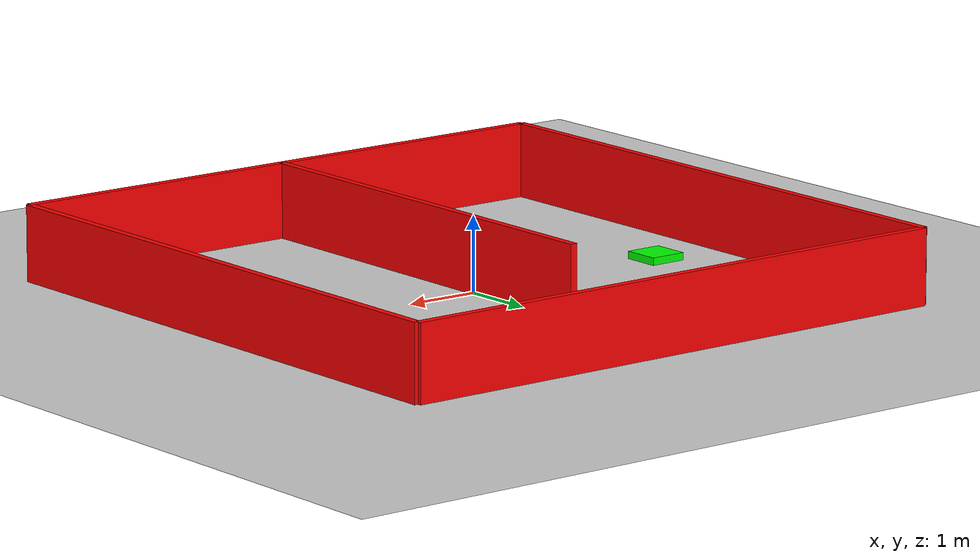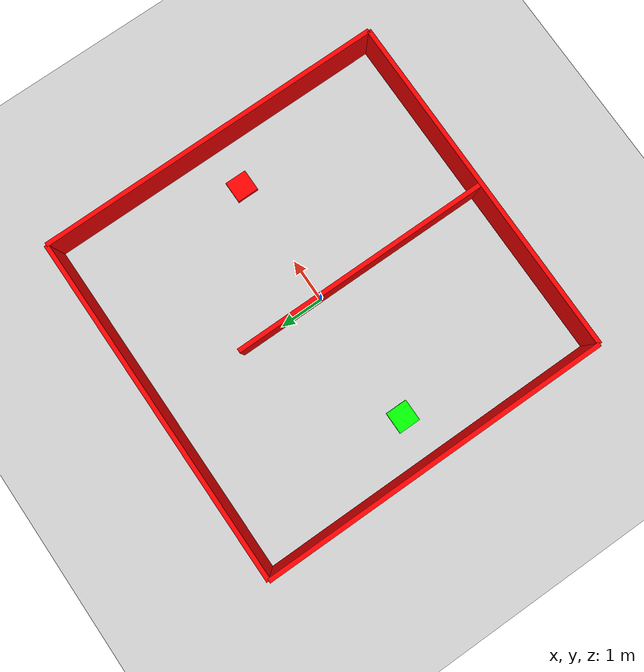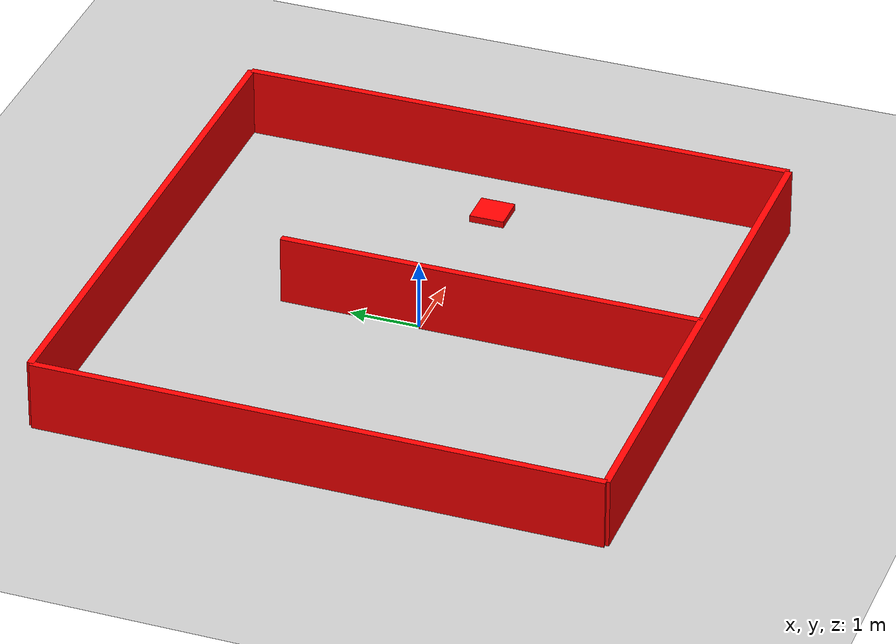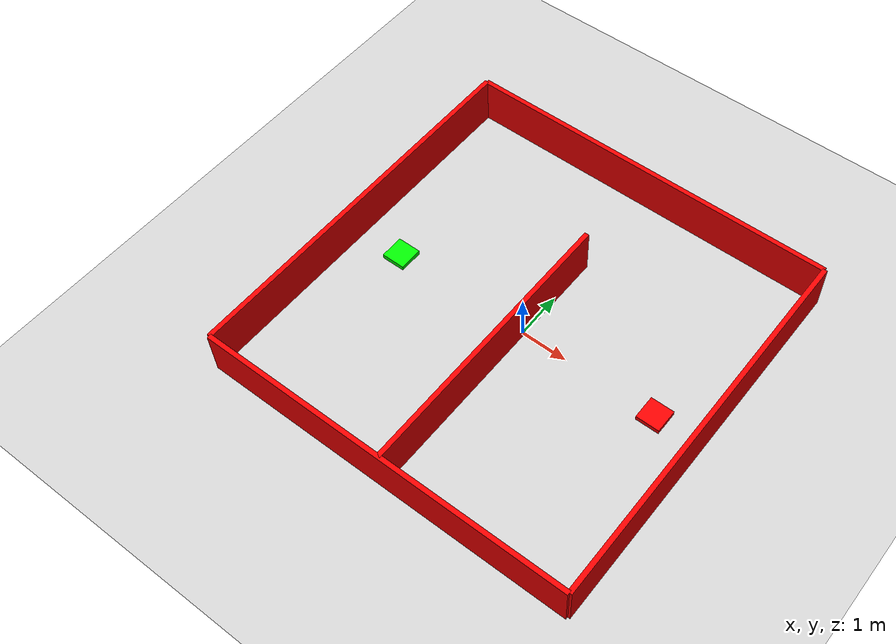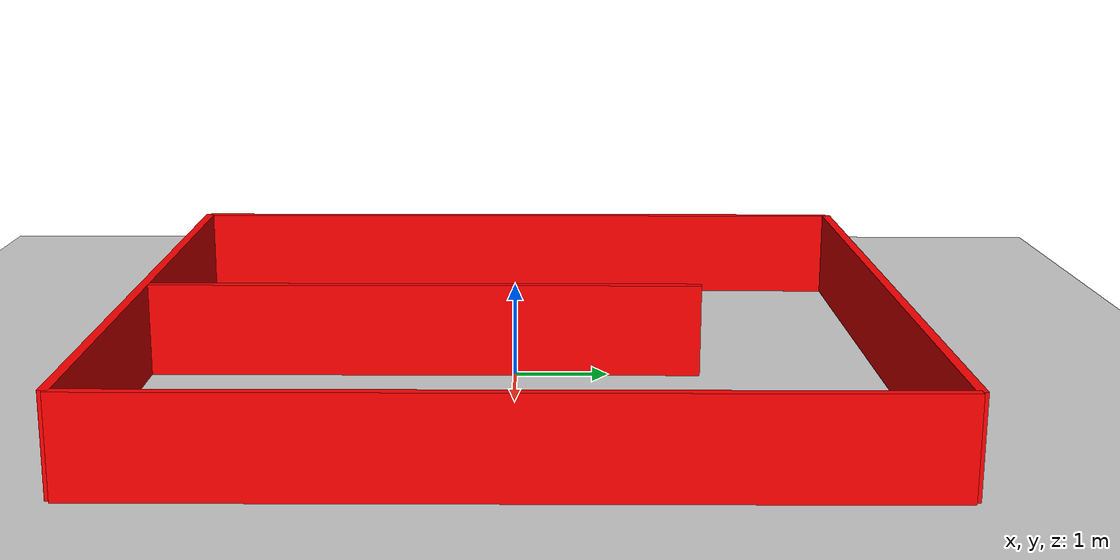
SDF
<sdf version="1.6">
 <world name="start_goal_world">
  <scene><shadows>false</shadows></scene>
  <include><uri>model://ground_plane</uri></include>
  <include><uri>model://sun</uri></include>
  <model name="wall1">
   <static>true</static>
   <pose>0 -1 0.5 0 0 0</pose>
   <link name="link">
    <collision name="collision"><geometry><box><size>0.1 6.0 1.0</size></box></geometry></collision>
    <visual name="visual">
     <geometry><box><size>0.1 6.0 1.0</size></box></geometry>
     <material><ambient>1 0 0 1</ambient></material>
    </visual>
   </link>
  </model>
  <model name="wall2">
   <static>true</static>
   <pose>-4 0 0.5 0 0 0</pose>
   <link name="link">
    <collision name="collision"><geometry><box><size>0.1 8.0 1.0</size></box></geometry></collision>
    <visual name="visual">
     <geometry><box><size>0.1 8.0 1.0</size></box></geometry>
     <material><ambient>1 0 0 1</ambient></material>
    </visual>
   </link>
  </model>
  <model name="wall3">
   <static>true</static>
   <pose>4 0 0.5 0 0 0</pose>
   <link name="link">
    <collision name="collision"><geometry><box><size>0.1 8.0 1.0</size></box></geometry></collision>
    <visual name="visual">
     <geometry><box><size>0.1 8.0 1.0</size></box></geometry>
     <material><ambient>1 0 0 1</ambient></material>
    </visual>
   </link>
  </model>
  <model name="wall4">
   <static>true</static>
   <pose>0 4 0.5 0 0 1.5708</pose>
   <link name="link">
    <collision name="collision"><geometry><box><size>0.1 8.0 1.0</size></box></geometry></collision>
    <visual name="visual">
     <geometry><box><size>0.1 8.0 1.0</size></box></geometry>
     <material><ambient>1 0 0 1</ambient></material>
    </visual>
   </link>
  </model>
  <model name="wall5">
   <static>true</static>
   <pose>0 -4 0.5 0 0 1.5708</pose>
   <link name="link">
    <collision name="collision"><geometry><box><size>0.1 8.0 1.0</size></box></geometry></collision>
    <visual name="visual">
     <geometry><box><size>0.1 8.0 1.0</size></box></geometry>
     <material><ambient>1 0 0 1</ambient></material>
    </visual>
   </link>
  </model>
  <model name="start_point">
   <static>true</static>
   <link name="link">
    <visual name="visual">
     <geometry><box><size>0.5 0.5 0.1</size></box></geometry>
     <material><ambient>0 1 0 1</ambient><diffuse>0 1 0 1</diffuse></material>
    </visual>
    <pose>0 0 0.05 0 0 0</pose>
   </link>
   <pose>-3 0 0 0 0 0</pose>
  </model>
  <model name="goal_point">
   <static>true</static>
   <link name="link">
    <visual name="visual">
     <geometry><box><size>0.5 0.5 0.1</size></box></geometry>
     <material><ambient>1 0 0 1</ambient><diffuse>1 0 0 1</diffuse></material>
    </visual>
    <pose>0 0 0.05 0 0 0</pose>
   </link>
   <pose>3 0 0 0 0 0</pose>
  </model>
  <physics type="ode">
   <max_step_size>0.004</max_step_size>
   <max_step_size>0.001</max_step_size>
   <real_time_update_rate>3000</real_time_update_rate>
   <ode>
    <solver><type>quick</type><iters>20</iters><sor>1.3</sor></solver>
    <constraints>
     <cfm>0.0</cfm>
     <erp>0.2</erp>
     <contact_max_correcting_vel>100.0</contact_max_correcting_vel>
     <contact_surface_layer>0.001</contact_surface_layer>
    </constraints>
   </ode>
  </physics>
 </world>
</sdf>
